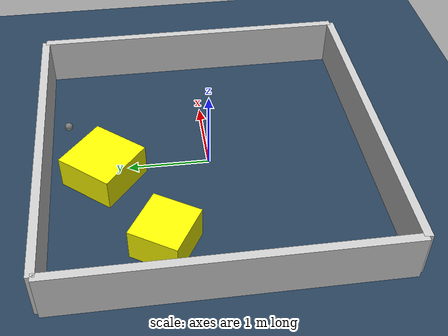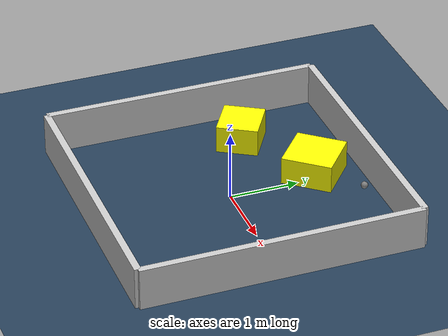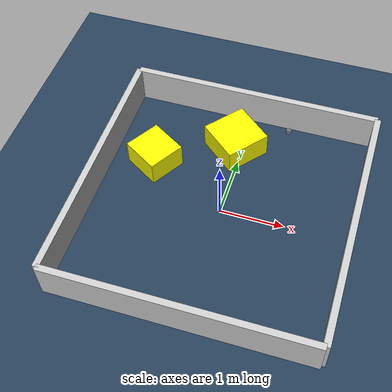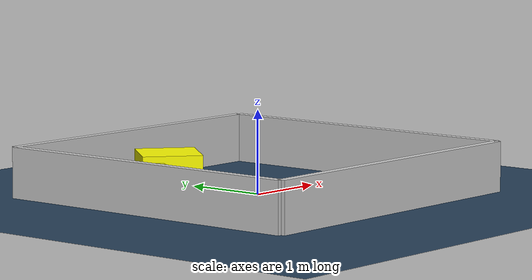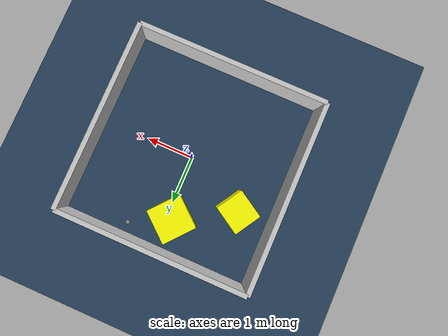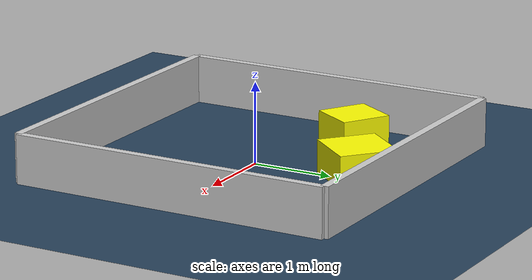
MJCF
<?xml version="1.0" ?>
<mujoco model="generated_environment">
  <option timestep="0.01" integrator="RK4" cone="elliptic"/>
  <default>
    <geom density="1"/>
  </default>
  <asset>
    <texture builtin="gradient" height="3072" rgb1="0.3 0.5 0.7" rgb2="0 0 0" type="skybox" width="512"/>
    <texture builtin="checker" height="300" mark="edge" markrgb="0.8 0.8 0.8" name="groundplane" rgb1="0.2 0.3 0.4" rgb2="0.1 0.2 0.3" type="2d" width="300"/>
    <material name="groundplane" reflectance="0.2" texrepeat="5 5" texture="groundplane" texuniform="true"/>
    <material name="robot" rgba="0.0 1.0 0.0 1"/>
  </asset>
  <worldbody>
    <light dir="0 0 -1" directional="true" pos="0 0 1.5"/>
    <geom condim="4" friction="1.0 0.005 0.001" material="groundplane" name="floor" size="0 0 0.05" type="plane"/>
    <body name="walls">
      <geom name="wall_1" condim="4" pos="-2.0 0.0 0.3" rgba="0.800000011920929 0.800000011920929 0.800000011920929 1.0" size="0.05 2.0 0.3" type="box"/>
      <geom name="wall_2" condim="4" pos="2.0 0.0 0.3" rgba="0.800000011920929 0.800000011920929 0.800000011920929 1.0" size="0.05 2.0 0.3" type="box"/>
      <geom name="wall_3" condim="4" pos="0.0 -2.0 0.3" rgba="0.800000011920929 0.800000011920929 0.800000011920929 1.0" size="2.0 0.05 0.3" type="box"/>
      <geom name="wall_4" condim="4" pos="0.0 2.0 0.3" rgba="0.800000011920929 0.800000011920929 0.800000011920929 1.0" size="2.0 0.05 0.3" type="box"/>
    </body>
    <body name="robot">
      <joint name="joint_x" type="slide" pos="0 0 0" axis="1 0 0"/>
      <joint name="joint_y" type="slide" pos="0 0 0" axis="0 1 0"/>
      <geom name="robot" type="sphere" pos="0.6530353233735533 1.7216275763110196 0.2" size="0.05" mass="5." friction="1.0 0.005 0.0001" condim="4"/>
      <site name="sensor_ball"/>
    </body>
    <body name="obstacle_1_movable">
      <geom name="obstacle_1_movable" condim="4" pos="-0.12384837989541175 1.2938707342456062 0.2" euler="0 0 139.915974934142" friction="1.0 0.005 0.001" rgba="1 1 0 1" size="0.36316998892901825 0.36402470368833784 0.2" type="box" mass="0.1"/>
      <joint type="free"/>
    </body>
    <body name="obstacle_2_movable">
      <geom name="obstacle_2_movable" condim="4" pos="-1.2724369133888231 0.6389674429656989 0.2" euler="0 0 328.67736876149706" friction="1.0 0.005 0.001" rgba="1 1 0 1" size="0.31447822732788216 0.3000877356763688 0.2" type="box" mass="0.1"/>
      <joint type="free"/>
    </body>
  </worldbody>
  <actuator>
    <motor name="actuator_x" joint="joint_x" gear="1" ctrlrange="-1 1"/>
    <motor name="actuator_y" joint="joint_y" gear="1" ctrlrange="-1 1"/>
  </actuator>
</mujoco>
